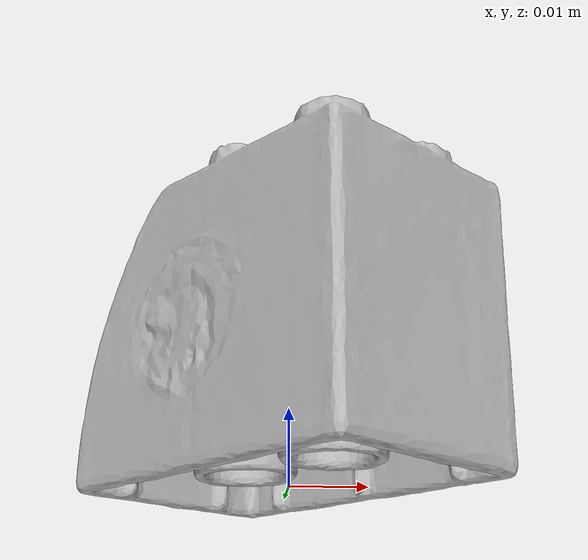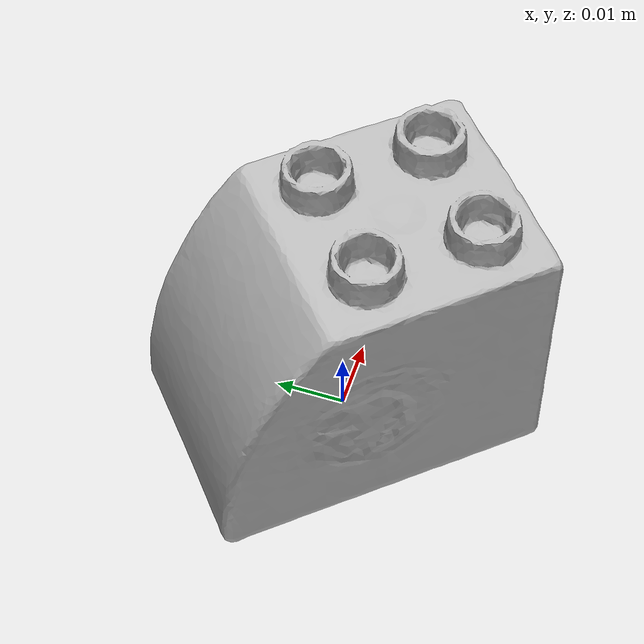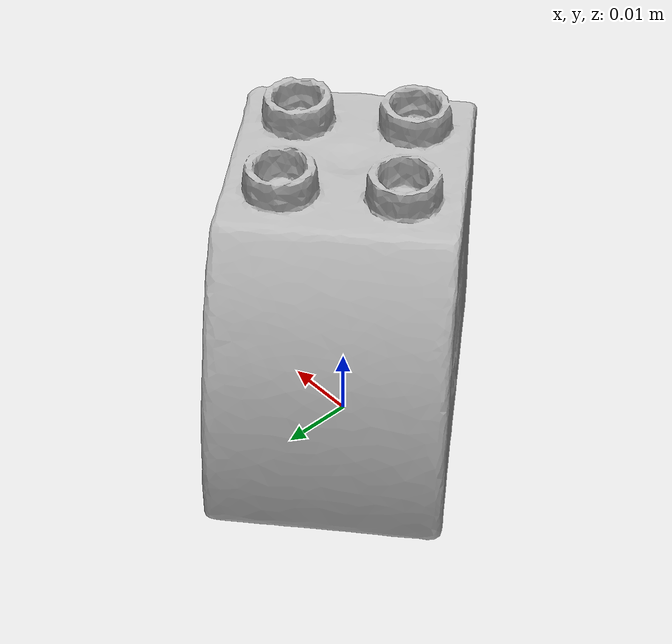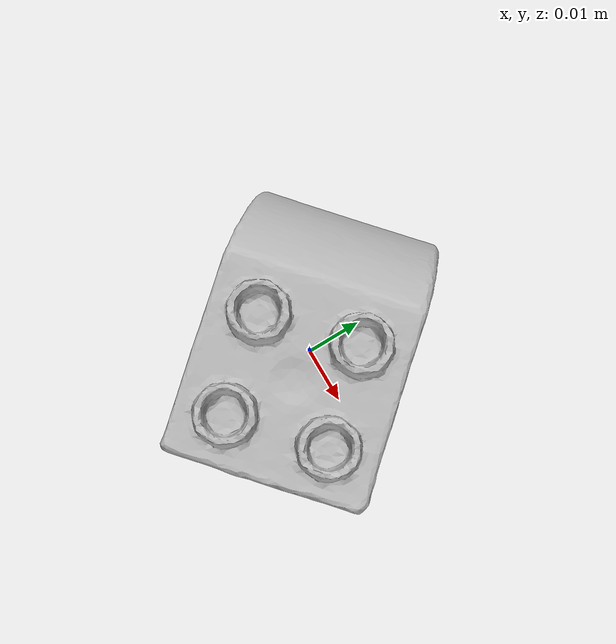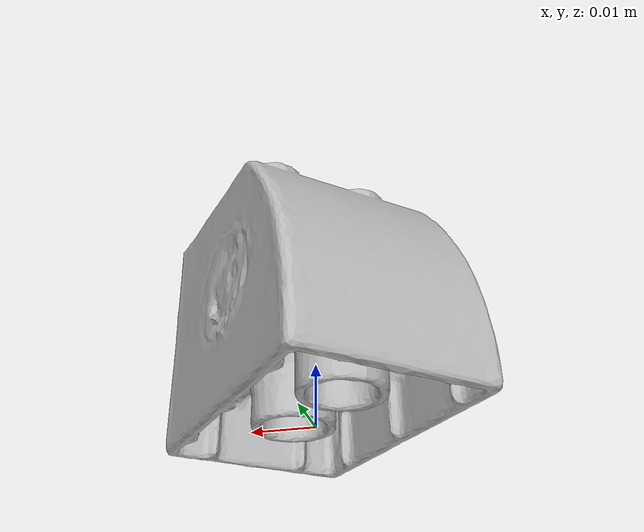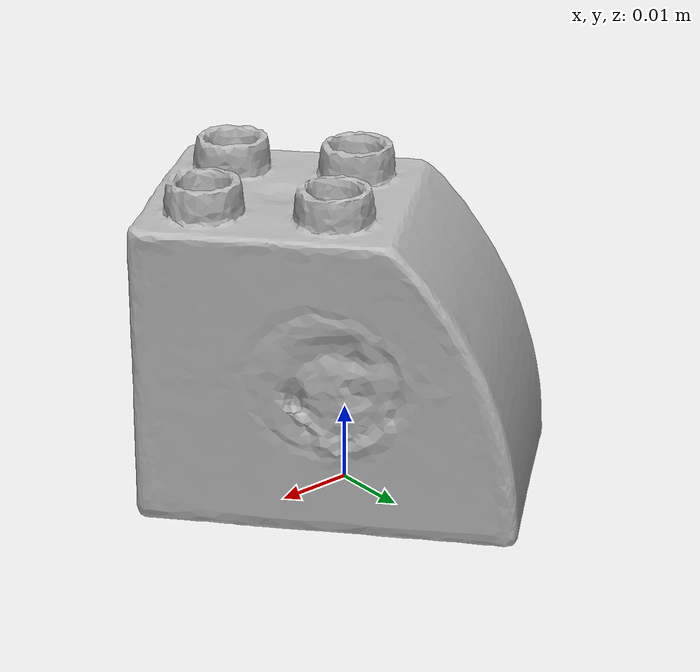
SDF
<?xml version="1.0" ?>
<sdf version='1.8'>
  <model name='ycb_073-d_lego_duplo'>
    <link name='body'>
      <inertial>
        <mass>0.0512721146167</mass>
        <pose>0.00189639103 -0.00209537675 0.0230522322 0 0 0</pose>
        <inertia>
          <ixx>1.14010506065e-05</ixx>
          <ixy>1.83301019504e-06</ixy>
          <ixz>-6.7828143631e-07</ixz>
          <iyy>1.08471362912e-05</iyy>
          <iyz>8.24392907416e-07</iyz>
          <izz>1.30385368886e-05</izz>
        </inertia>
      </inertial>
      <visual name='ycb_073-d_lego_duplo_visual'>
        <pose>0.022119 0.027816 0.000277 0 0 0</pose>
        <geometry>
          <mesh>
            <uri>model://ycb_073-d_lego_duplo/meshes/textured.dae</uri>
          </mesh>
        </geometry>
      </visual>
      <collision name='ycb_073-d_lego_duplo_collision'>
        <pose>0.022119 0.027816 0.000277 0 0 0</pose>
        <geometry>
          <mesh>
            <uri>model://ycb_073-d_lego_duplo/meshes/nontextured.stl</uri>
          </mesh>
        </geometry>
        <max_contacts>10</max_contacts>
        <surface>
          <contact>
            <ode>
              <kp>1e15</kp>
              <kd>1e13</kd>
            </ode>
          </contact>
        </surface>
      </collision>
    </link>
  </model>
</sdf>
